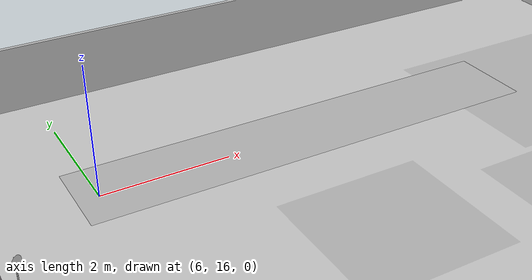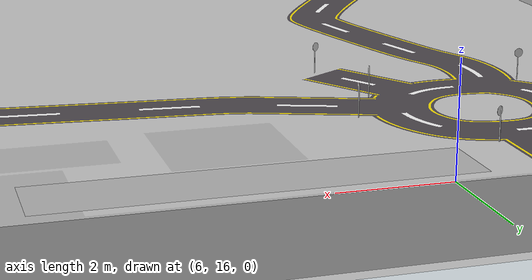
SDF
<sdf version="1.7">
 <world name="default">
  <model name="ground_plane">
   <static>1</static>
   <link name="link">
    <collision name="collision">
     <geometry><plane><normal>0 0 1</normal><size>100 100</size></plane></geometry>
     <surface><friction><ode><mu>100</mu><mu2>50</mu2></ode></friction></surface>
    </collision>
    <visual name="visual">
     <cast_shadows>0</cast_shadows>
     <geometry><plane><normal>0 0 1</normal><size>100 100</size></plane></geometry>
     <material>
      <script><uri>file://media/materials/scripts/gazebo.material</uri><name>Gazebo/Grey</name></script>
     </material>
    </visual>
   </link>
  </model>
  <gravity>0 0 -9.8</gravity>
  <magnetic_field>6e-06 2.3e-05 -4.2e-05</magnetic_field>
  <atmosphere type="adiabatic"/>
  <physics type="ode">
   <max_step_size>0.001</max_step_size>
   <real_time_factor>1</real_time_factor>
   <real_time_update_rate>1000</real_time_update_rate>
  </physics>
  <scene><ambient>0.4 0.4 0.4 1</ambient><background>0.7 0.7 0.7 1</background><shadows>1</shadows></scene>
  <spherical_coordinates>
   <surface_model>EARTH_WGS84</surface_model>
   <latitude_deg>0</latitude_deg>
   <longitude_deg>0</longitude_deg>
   <elevation>0</elevation>
   <heading_deg>0</heading_deg>
  </spherical_coordinates>
  <model name="traffic_env_02">
   <link name="link_0">
    <inertial>
     <mass>1</mass>
     <inertia>
      <ixx>0.166667</ixx>
      <ixy>0</ixy>
      <ixz>0</ixz>
      <iyy>0.166667</iyy>
      <iyz>0</iyz>
      <izz>0.166667</izz>
     </inertia>
    </inertial>
    <kinematic>1</kinematic>
    <visual name="visual">
     <geometry><mesh><uri>model://traffic_iisc/IISC_traffic_Env.dae</uri><scale>5 5 5</scale></mesh></geometry>
     <material>
      <lighting>1</lighting>
      <script><uri>__default__</uri><name>__default__</name></script>
      <shader type="pixel"><normal_map>__default__</normal_map></shader>
     </material>
     <cast_shadows>0</cast_shadows>
    </visual>
    <collision name="collision">
     <geometry><mesh><uri>model://traffic_iisc/IISC_traffic_Env.dae</uri><scale>5 5 5</scale></mesh></geometry>
     <surface>
      <friction>
       <ode><mu>1000</mu><mu2>1000</mu2><fdir1>0 0 0</fdir1><slip1>0</slip1><slip2>0</slip2></ode>
       <torsional>
        <coefficient>1</coefficient>
        <patch_radius>0</patch_radius>
        <surface_radius>0</surface_radius>
        <use_patch_radius>1</use_patch_radius>
        <ode><slip>0</slip></ode>
       </torsional>
      </friction>
      <bounce><restitution_coefficient>0</restitution_coefficient><threshold>1e+06</threshold></bounce>
      <contact>
       <collide_without_contact>0</collide_without_contact>
       <collide_without_contact_bitmask>1</collide_without_contact_bitmask>
       <collide_bitmask>1</collide_bitmask>
       <ode>
        <soft_cfm>0</soft_cfm>
        <soft_erp>0.2</soft_erp>
        <kp>1e+13</kp>
        <kd>1</kd>
        <max_vel>0.01</max_vel>
        <min_depth>0</min_depth>
       </ode>
       <bullet>
        <split_impulse>1</split_impulse>
        <split_impulse_penetration_threshold>-0.01</split_impulse_penetration_threshold>
        <soft_cfm>0</soft_cfm>
        <soft_erp>0.2</soft_erp>
        <kp>1e+13</kp>
        <kd>1</kd>
       </bullet>
      </contact>
     </surface>
    </collision>
   </link>
   <static>0</static>
   <pose>3.97409 1.60387 0.45 0 -0 0</pose>
  </model>
  <light name="user_directional_light_0" type="directional">
   <pose>-25.6553 -24.5889 1 0 -0 0</pose>
   <diffuse>0.5 0.5 0.5 1</diffuse>
   <specular>0.1 0.1 0.1 1</specular>
   <direction>0.1 0.1 -0.9</direction>
   <attenuation>
    <range>20</range>
    <constant>0.5</constant>
    <linear>0.01</linear>
    <quadratic>0.001</quadratic>
   </attenuation>
  </light>
  <light name="user_directional_light_0_clone" type="directional">
   <pose>-2.4124 -8.42313 1 0 -0 0</pose>
   <diffuse>0.498039 0.498039 0.498039 1</diffuse>
   <specular>0.0980392 0.0980392 0.0980392 1</specular>
   <direction>0.109764 0.109764 -0.987878</direction>
   <attenuation>
    <range>20</range>
    <constant>0.5</constant>
    <linear>0.01</linear>
    <quadratic>0.001</quadratic>
   </attenuation>
  </light>
  <light name="user_directional_light_0_clone_1" type="directional">
   <pose>-3.45101 -9.15569 1 0 -0 0</pose>
   <diffuse>0.494118 0.494118 0.494118 1</diffuse>
   <specular>0.0941176 0.0941176 0.0941176 1</specular>
   <direction>0.109764 0.109764 -0.987878</direction>
   <attenuation>
    <range>20</range>
    <constant>0.5</constant>
    <linear>0.01</linear>
    <quadratic>0.001</quadratic>
   </attenuation>
  </light>
  <light name="user_directional_light_0_clone_0" type="directional">
   <pose>-1.3054 -9.12138 1 0 -0 0</pose>
   <diffuse>0.494118 0.494118 0.494118 1</diffuse>
   <specular>0.0901961 0.0901961 0.0901961 1</specular>
   <direction>0.109764 0.109764 -0.987878</direction>
   <attenuation>
    <range>20</range>
    <constant>0.8</constant>
    <linear>0.01</linear>
    <quadratic>0.001</quadratic>
   </attenuation>
  </light>
  <model name="rbl_logo_main">
   <link name="link_4">
    <inertial>
     <mass>1</mass>
     <inertia>
      <ixx>0.166667</ixx>
      <ixy>0</ixy>
      <ixz>0</ixz>
      <iyy>0.166667</iyy>
      <iyz>0</iyz>
      <izz>0.166667</izz>
     </inertia>
    </inertial>
    <kinematic>1</kinematic>
    <visual name="visual">
     <geometry>
      <mesh><uri>model://traffic_iisc/rbllogo/rbl logo/logos_IISC.dae</uri><scale>5 5 5</scale></mesh>
     </geometry>
     <material>
      <lighting>1</lighting>
      <script><uri>__default__</uri><name>__default__</name></script>
      <shader type="pixel"><normal_map>__default__</normal_map></shader>
     </material>
     <transparency>0.1</transparency>
     <cast_shadows>0</cast_shadows>
    </visual>
    <collision name="collision">
     <geometry>
      <mesh><uri>model://traffic_iisc/rbllogo/rbl logo/logos_IISC.dae</uri><scale>5 5 5</scale></mesh>
     </geometry>
     <surface>
      <friction>
       <ode><mu>100</mu><mu2>50</mu2><fdir1>0 0 0</fdir1><slip1>0</slip1><slip2>0</slip2></ode>
       <torsional>
        <coefficient>1</coefficient>
        <patch_radius>0</patch_radius>
        <surface_radius>0</surface_radius>
        <use_patch_radius>1</use_patch_radius>
        <ode><slip>0</slip></ode>
       </torsional>
      </friction>
      <bounce><restitution_coefficient>0</restitution_coefficient><threshold>1e+06</threshold></bounce>
      <contact>
       <collide_without_contact>0</collide_without_contact>
       <collide_without_contact_bitmask>1</collide_without_contact_bitmask>
       <collide_bitmask>1</collide_bitmask>
       <ode>
        <soft_cfm>0</soft_cfm>
        <soft_erp>0.2</soft_erp>
        <kp>1e+13</kp>
        <kd>1</kd>
        <max_vel>0.01</max_vel>
        <min_depth>0</min_depth>
       </ode>
       <bullet>
        <split_impulse>1</split_impulse>
        <split_impulse_penetration_threshold>-0.01</split_impulse_penetration_threshold>
        <soft_cfm>0</soft_cfm>
        <soft_erp>0.2</soft_erp>
        <kp>1e+13</kp>
        <kd>1</kd>
       </bullet>
      </contact>
     </surface>
    </collision>
   </link>
   <static>0</static>
   <pose>4.15123 1.30023 0.632545 0 -0 0</pose>
  </model>
 </world>
</sdf>
